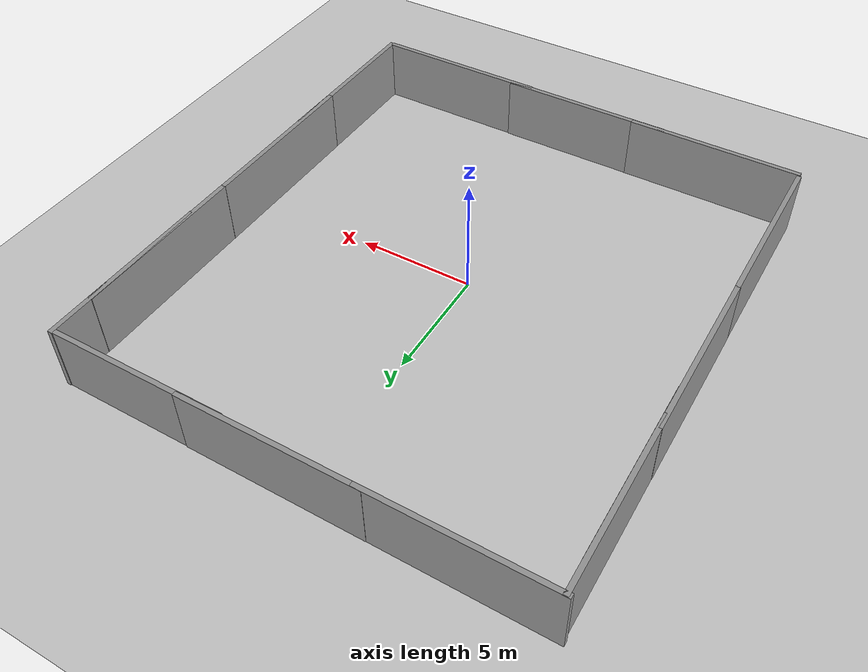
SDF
<sdf version="1.6">
 <world name="default">
  <light name="sun" type="directional">
   <pose>0 0 10 0 -0 0</pose>
   <diffuse>0.8 0.8 0.8 1</diffuse>
   <specular>0.2 0.2 0.2 1</specular>
   <attenuation>
    <range>1000</range>
    <constant>0.9</constant>
    <linear>0.01</linear>
    <quadratic>0.001</quadratic>
   </attenuation>
   <direction>-0.5 0.1 -0.9</direction>
  </light>
  <model name="ground_plane">
   <static>1</static>
   <link name="link">
    <collision name="collision">
     <geometry><plane><normal>0 0 1</normal><size>100 100</size></plane></geometry>
     <surface><friction><ode><mu>100</mu><mu2>50</mu2></ode></friction></surface>
    </collision>
    <visual name="visual">
     <cast_shadows>0</cast_shadows>
     <geometry><plane><normal>0 0 1</normal><size>100 100</size></plane></geometry>
     <material>
      <script><uri>file://media/materials/scripts/gazebo.material</uri><name>Gazebo/Grey</name></script>
     </material>
    </visual>
   </link>
  </model>
  <gravity>0 0 -9.8</gravity>
  <magnetic_field>6e-06 2.3e-05 -4.2e-05</magnetic_field>
  <atmosphere type="adiabatic"/>
  <physics name="default_physics" default="0" type="ode">
   <max_step_size>0.001</max_step_size>
   <real_time_factor>1</real_time_factor>
   <real_time_update_rate>1000</real_time_update_rate>
  </physics>
  <scene><ambient>0.4 0.4 0.4 1</ambient><background>0.7 0.7 0.7 1</background><shadows>1</shadows></scene>
  <spherical_coordinates>
   <surface_model>EARTH_WGS84</surface_model>
   <latitude_deg>0</latitude_deg>
   <longitude_deg>0</longitude_deg>
   <elevation>0</elevation>
   <heading_deg>0</heading_deg>
  </spherical_coordinates>
  <model name="grey_wall">
   <static>1</static>
   <link name="link">
    <pose>0 0 1.4 0 -0 0</pose>
    <collision name="collision"><geometry><box><size>7.5 0.2 2.8</size></box></geometry></collision>
    <visual name="visual">
     <cast_shadows>0</cast_shadows>
     <geometry><box><size>7.5 0.2 2.8</size></box></geometry>
     <material>
      <script>
       <uri>model://grey_wall/materials/scripts</uri>
       <uri>model://grey_wall/materials/textures</uri>
       <name>vrc/grey_wall</name>
      </script>
     </material>
    </visual>
   </link>
   <pose>-6.35916 11.8395 0 0 -0 0</pose>
  </model>
  <model name="grey_wall_clone">
   <static>1</static>
   <link name="link">
    <pose>0 0 1.4 0 -0 0</pose>
    <collision name="collision"><geometry><box><size>7.5 0.2 2.8</size></box></geometry></collision>
    <visual name="visual">
     <cast_shadows>0</cast_shadows>
     <geometry><box><size>7.5 0.2 2.8</size></box></geometry>
     <material>
      <script>
       <uri>model://grey_wall/materials/scripts</uri>
       <uri>model://grey_wall/materials/textures</uri>
       <name>vrc/grey_wall</name>
      </script>
     </material>
    </visual>
   </link>
   <pose>0.707887 11.8476 0 0 -0 0</pose>
  </model>
  <model name="grey_wall_clone_0">
   <static>1</static>
   <link name="link">
    <pose>0 0 1.4 0 -0 0</pose>
    <collision name="collision"><geometry><box><size>7.5 0.2 2.8</size></box></geometry></collision>
    <visual name="visual">
     <cast_shadows>0</cast_shadows>
     <geometry><box><size>7.5 0.2 2.8</size></box></geometry>
     <material>
      <script>
       <uri>model://grey_wall/materials/scripts</uri>
       <uri>model://grey_wall/materials/textures</uri>
       <name>vrc/grey_wall</name>
      </script>
     </material>
    </visual>
   </link>
   <pose>6.26845 11.826 0 0 -0 0</pose>
  </model>
  <model name="grey_wall_clone_1">
   <static>1</static>
   <link name="link">
    <pose>0 0 1.4 0 -0 0</pose>
    <collision name="collision"><geometry><box><size>7.5 0.2 2.8</size></box></geometry></collision>
    <visual name="visual">
     <cast_shadows>0</cast_shadows>
     <geometry><box><size>7.5 0.2 2.8</size></box></geometry>
     <material>
      <script>
       <uri>model://grey_wall/materials/scripts</uri>
       <uri>model://grey_wall/materials/textures</uri>
       <name>vrc/grey_wall</name>
      </script>
     </material>
    </visual>
   </link>
   <pose>-6.23425 -10.0145 0 0 -0 0</pose>
  </model>
  <model name="grey_wall_clone_3">
   <static>1</static>
   <link name="link">
    <pose>0 0 1.4 0 -0 0</pose>
    <collision name="collision"><geometry><box><size>7.5 0.2 2.8</size></box></geometry></collision>
    <visual name="visual">
     <cast_shadows>0</cast_shadows>
     <geometry><box><size>7.5 0.2 2.8</size></box></geometry>
     <material>
      <script>
       <uri>model://grey_wall/materials/scripts</uri>
       <uri>model://grey_wall/materials/textures</uri>
       <name>vrc/grey_wall</name>
      </script>
     </material>
    </visual>
   </link>
   <pose>6.22318 -10.0618 0 0 -0 0</pose>
  </model>
  <model name="grey_wall_clone_2">
   <static>1</static>
   <link name="link">
    <pose>0 0 1.4 0 -0 0</pose>
    <collision name="collision"><geometry><box><size>7.5 0.2 2.8</size></box></geometry></collision>
    <visual name="visual">
     <cast_shadows>0</cast_shadows>
     <geometry><box><size>7.5 0.2 2.8</size></box></geometry>
     <material>
      <script>
       <uri>model://grey_wall/materials/scripts</uri>
       <uri>model://grey_wall/materials/textures</uri>
       <name>vrc/grey_wall</name>
      </script>
     </material>
    </visual>
   </link>
   <pose>-0.244673 -10.0282 0 0 -0 0</pose>
  </model>
  <model name="grey_wall_clone_4">
   <static>1</static>
   <link name="link">
    <pose>0 0 1.4 0 -0 0</pose>
    <collision name="collision"><geometry><box><size>7.5 0.2 2.8</size></box></geometry></collision>
    <visual name="visual">
     <cast_shadows>0</cast_shadows>
     <geometry><box><size>7.5 0.2 2.8</size></box></geometry>
     <material>
      <script>
       <uri>model://grey_wall/materials/scripts</uri>
       <uri>model://grey_wall/materials/textures</uri>
       <name>vrc/grey_wall</name>
      </script>
     </material>
    </visual>
   </link>
   <pose>-9.95603 -6.12638 0 0 -0 1.56959</pose>
  </model>
  <model name="grey_wall_clone_4_clone">
   <static>1</static>
   <link name="link">
    <pose>0 0 1.4 0 -0 0</pose>
    <collision name="collision"><geometry><box><size>7.5 0.2 2.8</size></box></geometry></collision>
    <visual name="visual">
     <cast_shadows>0</cast_shadows>
     <geometry><box><size>7.5 0.2 2.8</size></box></geometry>
     <material>
      <script>
       <uri>model://grey_wall/materials/scripts</uri>
       <uri>model://grey_wall/materials/textures</uri>
       <name>vrc/grey_wall</name>
      </script>
     </material>
    </visual>
   </link>
   <pose>-9.95711 1.34152 0 0 -0 1.56959</pose>
  </model>
  <model name="grey_wall_clone_4_clone_0">
   <static>1</static>
   <link name="link">
    <pose>0 0 1.4 0 -0 0</pose>
    <collision name="collision"><geometry><box><size>7.5 0.2 2.8</size></box></geometry></collision>
    <visual name="visual">
     <cast_shadows>0</cast_shadows>
     <geometry><box><size>7.5 0.2 2.8</size></box></geometry>
     <material>
      <script>
       <uri>model://grey_wall/materials/scripts</uri>
       <uri>model://grey_wall/materials/textures</uri>
       <name>vrc/grey_wall</name>
      </script>
     </material>
    </visual>
   </link>
   <pose>-9.93652 6.909 0 0 -0 1.56959</pose>
  </model>
  <model name="grey_wall_clone_4_clone_1">
   <static>1</static>
   <link name="link">
    <pose>0 0 1.4 0 -0 0</pose>
    <collision name="collision"><geometry><box><size>7.5 0.2 2.8</size></box></geometry></collision>
    <visual name="visual">
     <cast_shadows>0</cast_shadows>
     <geometry><box><size>7.5 0.2 2.8</size></box></geometry>
     <material>
      <script>
       <uri>model://grey_wall/materials/scripts</uri>
       <uri>model://grey_wall/materials/textures</uri>
       <name>vrc/grey_wall</name>
      </script>
     </material>
    </visual>
   </link>
   <pose>10.0309 6.26805 0 0 -0 1.56959</pose>
  </model>
  <model name="grey_wall_clone_4_clone_2">
   <static>1</static>
   <link name="link">
    <pose>0 0 1.4 0 -0 0</pose>
    <collision name="collision"><geometry><box><size>7.5 0.2 2.8</size></box></geometry></collision>
    <visual name="visual">
     <cast_shadows>0</cast_shadows>
     <geometry><box><size>7.5 0.2 2.8</size></box></geometry>
     <material>
      <script>
       <uri>model://grey_wall/materials/scripts</uri>
       <uri>model://grey_wall/materials/textures</uri>
       <name>vrc/grey_wall</name>
      </script>
     </material>
    </visual>
   </link>
   <pose>10.0166 -1.21417 0 0 -0 1.56959</pose>
  </model>
  <model name="grey_wall_clone_4_clone_3">
   <static>1</static>
   <link name="link">
    <pose>0 0 1.4 0 -0 0</pose>
    <collision name="collision"><geometry><box><size>7.5 0.2 2.8</size></box></geometry></collision>
    <visual name="visual">
     <cast_shadows>0</cast_shadows>
     <geometry><box><size>7.5 0.2 2.8</size></box></geometry>
     <material>
      <script>
       <uri>model://grey_wall/materials/scripts</uri>
       <uri>model://grey_wall/materials/textures</uri>
       <name>vrc/grey_wall</name>
      </script>
     </material>
    </visual>
   </link>
   <pose>10.0189 -6.38563 0 0 -0 1.56959</pose>
  </model>
  <model name="grey_wall_clone_4_clone_0_clone">
   <static>1</static>
   <link name="link">
    <pose>0 0 1.4 0 -0 0</pose>
    <collision name="collision"><geometry><box><size>7.5 0.2 2.8</size></box></geometry></collision>
    <visual name="visual">
     <cast_shadows>0</cast_shadows>
     <geometry><box><size>7.5 0.2 2.8</size></box></geometry>
     <material>
      <script>
       <uri>model://grey_wall/materials/scripts</uri>
       <uri>model://grey_wall/materials/textures</uri>
       <name>vrc/grey_wall</name>
      </script>
     </material>
    </visual>
   </link>
   <pose>-9.93945 8.16862 0 0 -0 1.56959</pose>
  </model>
  <model name="grey_wall_clone_4_clone_0_clone_0">
   <static>1</static>
   <link name="link">
    <pose>0 0 1.4 0 -0 0</pose>
    <collision name="collision"><geometry><box><size>7.5 0.2 2.8</size></box></geometry></collision>
    <visual name="visual">
     <cast_shadows>0</cast_shadows>
     <geometry><box><size>7.5 0.2 2.8</size></box></geometry>
     <material>
      <script>
       <uri>model://grey_wall/materials/scripts</uri>
       <uri>model://grey_wall/materials/textures</uri>
       <name>vrc/grey_wall</name>
      </script>
     </material>
    </visual>
   </link>
   <pose>10.0515 8.19837 0 0 -0 1.56959</pose>
  </model>
 </world>
</sdf>
